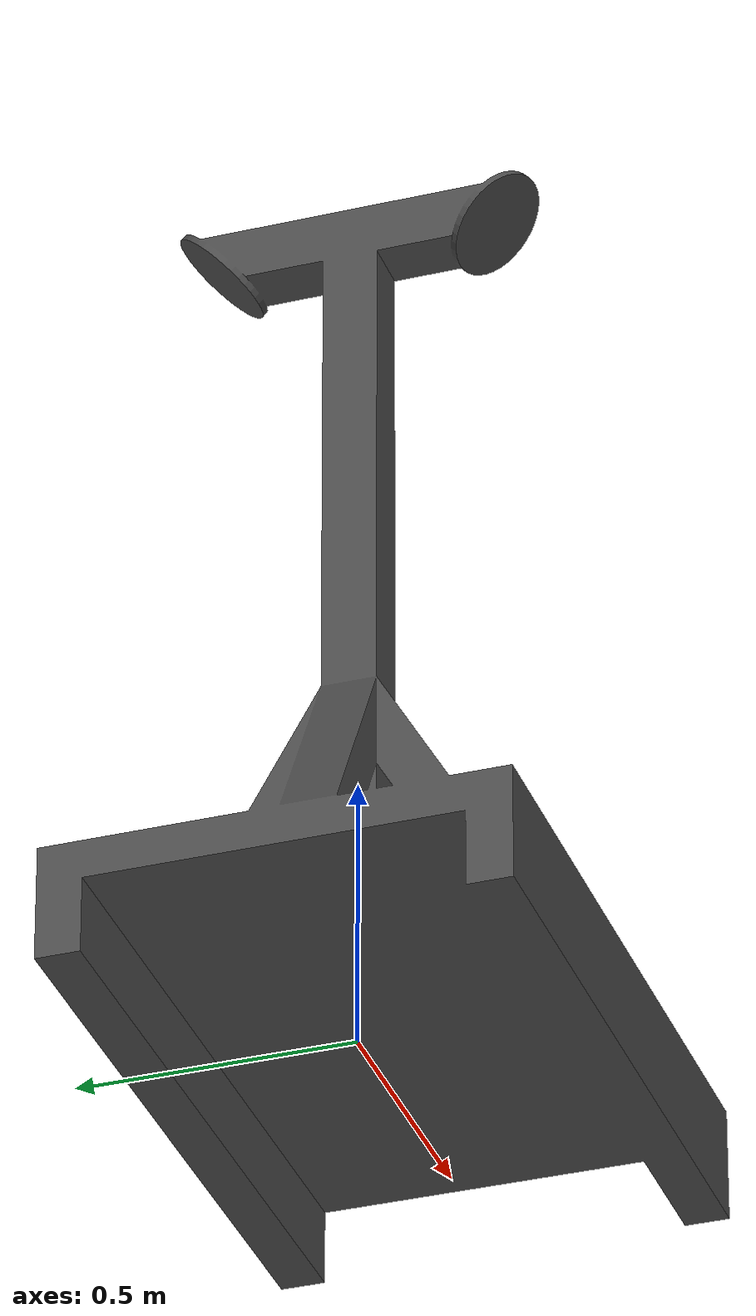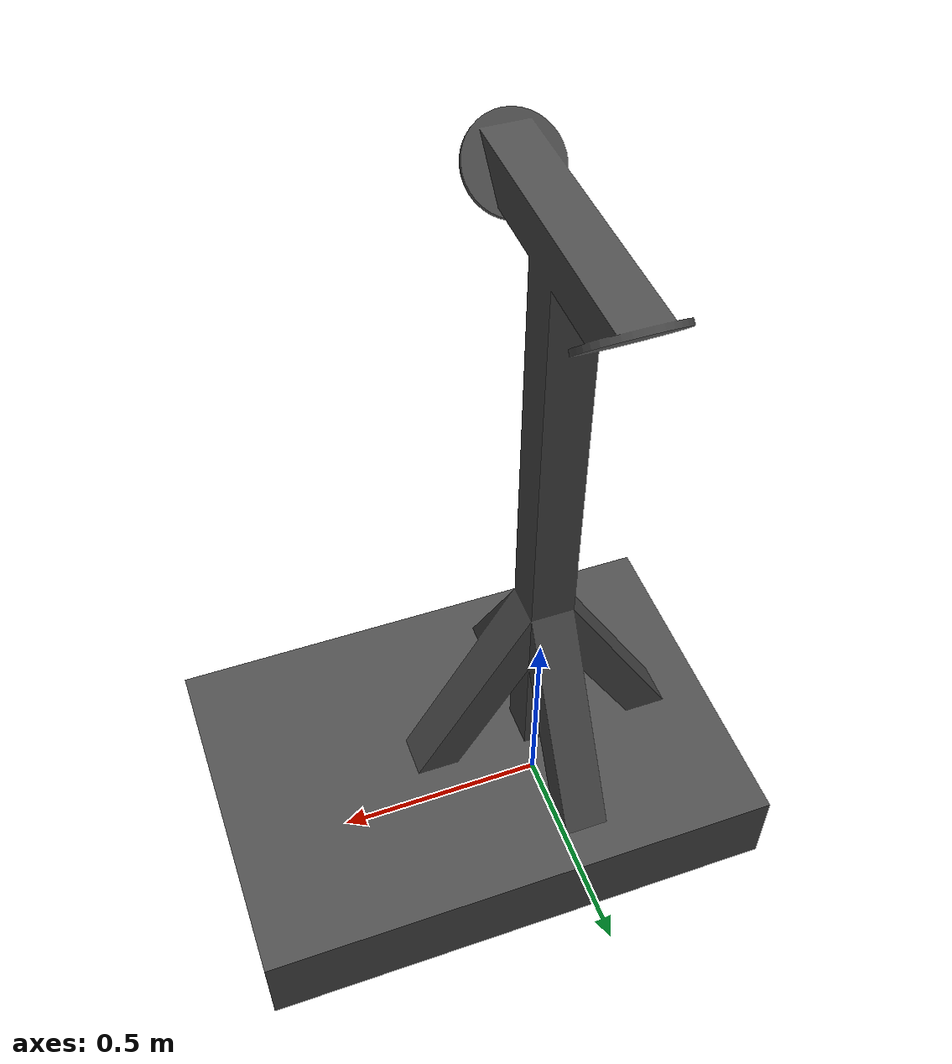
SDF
<?xml version='1.0'?>
<sdf version='1.6'>
  <model name='ur3_base'>
    <link name='base'>
      <pose frame=''>0 0 0 0 -0 3.14</pose>
      <self_collide>0</self_collide>
      <kinematic>0</kinematic>
      <gravity>1</gravity>
      <inertial>
        <mass>1</mass>
        <pose frame=''>0 0 0 0 -0 0</pose>
        <inertia>
          <ixx>1</ixx>
          <ixy>0</ixy>
          <ixz>0</ixz>
          <iyy>1</iyy>
          <iyz>0</iyz>
          <izz>1</izz>
        </inertia>
      </inertial>
      <visual name='base_visual'>
        <geometry>
          <mesh>
            <uri>model://ur3_base/meshes/ur3_base.stl</uri>
            <scale>1 1 1</scale>
          </mesh>
        </geometry>
        <material>
          <script>
            <name>Gazebo/DarkGrey</name>
            <uri>__default__</uri>
          </script>
          <shader type='pixel'>
            <normal_map>__default__</normal_map>
          </shader>
          <ambient>0.175 0.175 0.175 1</ambient>
          <diffuse>0.175 0.175 0.175 1</diffuse>
          <specular>0.175 0.175 0.175 1</specular>
          <emissive>0 0 0 1</emissive>
        </material>
        <pose frame=''>0 0 0 0 -0 0</pose>
        <transparency>0</transparency>
        <cast_shadows>1</cast_shadows>
      </visual>
      <collision name='collision_top'>
        <laser_retro>0</laser_retro>
        <max_contacts>5</max_contacts>
        <pose frame=''>0 0 1.62 0 -0 0</pose>
        <geometry>
          <box>
            <size>0.101665 0.433 0.099897</size>
          </box>
        </geometry>
        <surface>
          <friction>
            <ode>
              <mu>1</mu>
              <mu2>1</mu2>
              <fdir1>0 0 0</fdir1>
              <slip1>0</slip1>
              <slip2>0</slip2>
            </ode>
            <torsional>
              <coefficient>1</coefficient>
              <patch_radius>0</patch_radius>
              <surface_radius>0</surface_radius>
              <use_patch_radius>1</use_patch_radius>
              <ode>
                <slip>0</slip>
              </ode>
            </torsional>
          </friction>
          <bounce>
            <restitution_coefficient>0</restitution_coefficient>
            <threshold>1e+06</threshold>
          </bounce>
          <contact>
            <collide_without_contact>0</collide_without_contact>
            <collide_without_contact_bitmask>1</collide_without_contact_bitmask>
            <collide_bitmask>1</collide_bitmask>
            <ode>
              <soft_cfm>0</soft_cfm>
              <soft_erp>0.2</soft_erp>
              <kp>1e+13</kp>
              <kd>1</kd>
              <max_vel>0.01</max_vel>
              <min_depth>0</min_depth>
            </ode>
            <bullet>
              <split_impulse>1</split_impulse>
              <split_impulse_penetration_threshold>-0.01</split_impulse_penetration_threshold>
              <soft_cfm>0</soft_cfm>
              <soft_erp>0.2</soft_erp>
              <kp>1e+13</kp>
              <kd>1</kd>
            </bullet>
          </contact>
        </surface>
      </collision>
      <collision name='base_collision'>
        <laser_retro>0</laser_retro>
        <max_contacts>5</max_contacts>
        <pose frame=''>0 0 0.845 0 -0 0</pose>
        <geometry>
          <box>
            <size>0.101665 0.100287 1.45</size>
          </box>
        </geometry>
        <surface>
          <friction>
            <ode>
              <mu>1</mu>
              <mu2>1</mu2>
              <fdir1>0 0 0</fdir1>
              <slip1>0</slip1>
              <slip2>0</slip2>
            </ode>
            <torsional>
              <coefficient>1</coefficient>
              <patch_radius>0</patch_radius>
              <surface_radius>0</surface_radius>
              <use_patch_radius>1</use_patch_radius>
              <ode>
                <slip>0</slip>
              </ode>
            </torsional>
          </friction>
          <bounce>
            <restitution_coefficient>0</restitution_coefficient>
            <threshold>1e+06</threshold>
          </bounce>
          <contact>
            <collide_without_contact>0</collide_without_contact>
            <collide_without_contact_bitmask>1</collide_without_contact_bitmask>
            <collide_bitmask>1</collide_bitmask>
            <ode>
              <soft_cfm>0</soft_cfm>
              <soft_erp>0.2</soft_erp>
              <kp>1e+13</kp>
              <kd>1</kd>
              <max_vel>0.01</max_vel>
              <min_depth>0</min_depth>
            </ode>
            <bullet>
              <split_impulse>1</split_impulse>
              <split_impulse_penetration_threshold>-0.01</split_impulse_penetration_threshold>
              <soft_cfm>0</soft_cfm>
              <soft_erp>0.2</soft_erp>
              <kp>1e+13</kp>
              <kd>1</kd>
            </bullet>
          </contact>
        </surface>
      </collision>
    </link>
    <static>1</static>
    <allow_auto_disable>1</allow_auto_disable>
  </model>
</sdf>
